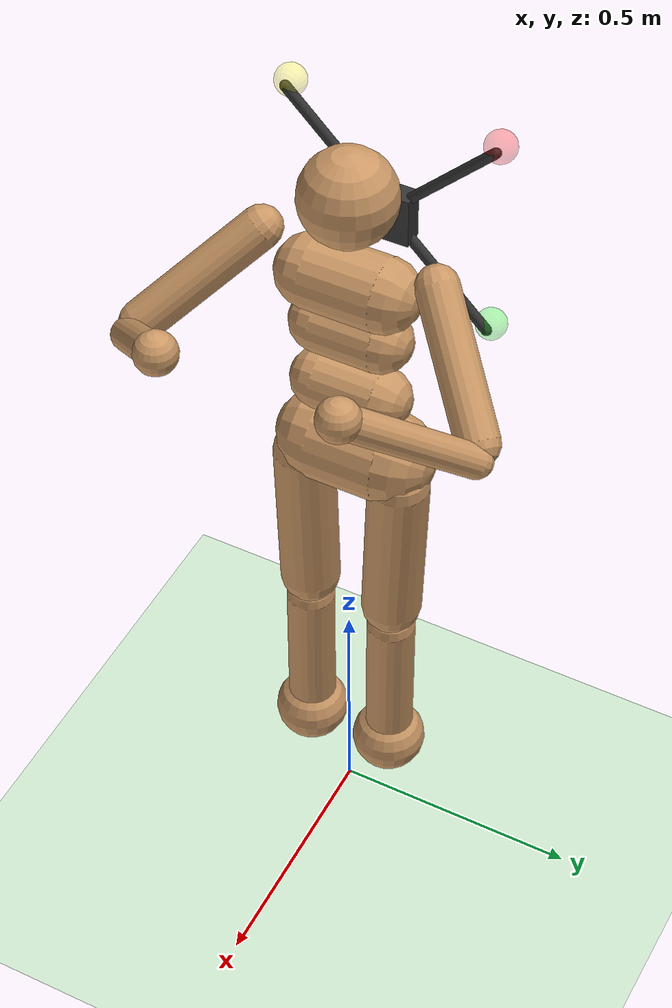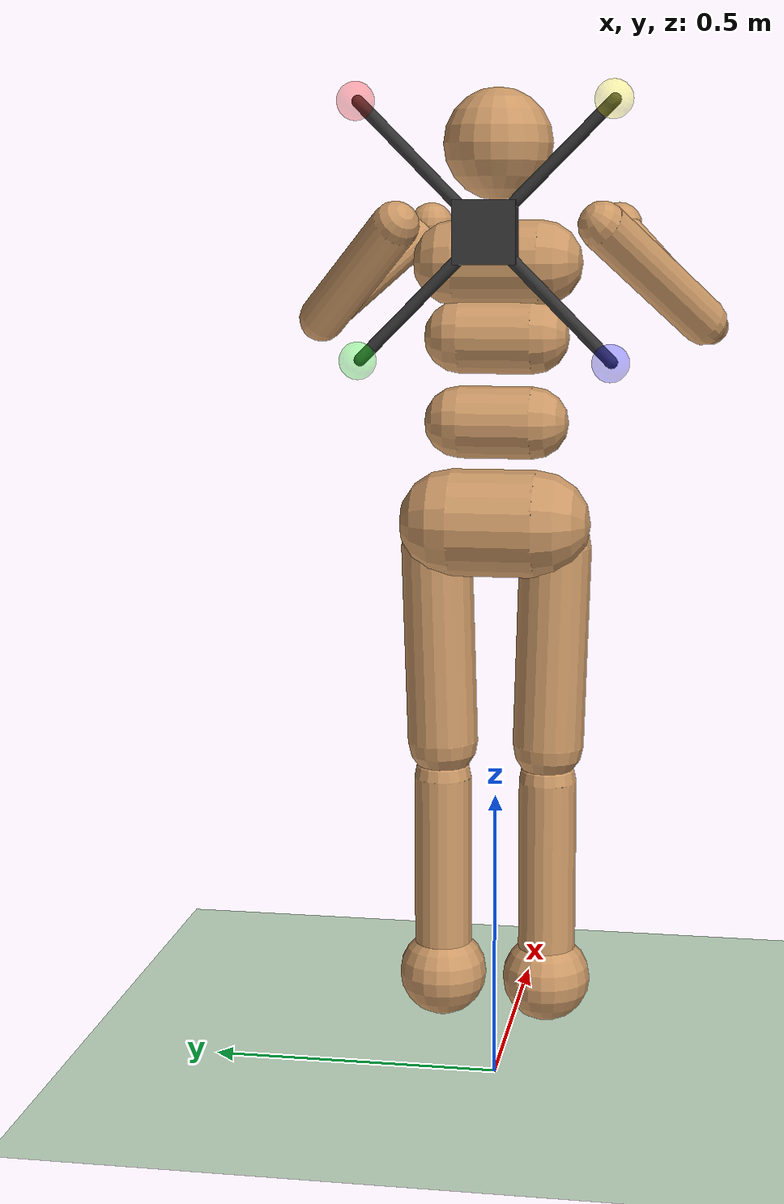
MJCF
<mujoco model="humanoid_quadrotor">
    <compiler angle="degree" inertiafromgeom="true"/>
    <default>
        <joint armature="1" damping="10" limited="true" stiffness="100"/>
        <geom conaffinity="1" condim="1" contype="1" margin="0.001" material="geom" rgba="0.8 0.6 .4 1"/>
        <motor ctrllimited="true" ctrlrange="-.4 .4"/>
        <default class="quad">
             <geom rgba="0.2 0.2 0.2 1" density="100"/>
        </default>
    </default>
    <option integrator="RK4" iterations="50" solver="PGS" timestep="0.003">
    </option>
    <size nkey="5" nuser_geom="1"/>
    <visual>
        <map fogend="5" fogstart="3"/>
    </visual>
    <asset>
        <texture builtin="gradient" height="100" rgb1=".4 .5 .6" rgb2="0 0 0" type="skybox" width="100"/>
        <texture builtin="flat" height="1278" mark="cross" markrgb="1 1 1" name="texgeom" random="0.01" rgb1="0.8 0.6 0.4" rgb2="0.8 0.6 0.4" type="cube" width="127"/>
        <texture builtin="checker" height="100" name="texplane" rgb1="0 0 0" rgb2="0.8 0.8 0.8" type="2d" width="100"/>
        <material name="MatPlane" reflectance="0.5" shininess="1" specular="1" texrepeat="60 60" texture="texplane"/>
        <material name="geom" texture="texgeom" texuniform="true"/>
    </asset>
    <worldbody>
        <light cutoff="100" diffuse="1 1 1" dir="-0 0 -1.3" directional="true" exponent="1" pos="0 0 1.3" specular=".1 .1 .1"/>
        <geom condim="3" friction="1 .1 .1" material="MatPlane" name="floor" pos="0 0 0" rgba="0.8 0.9 0.8 1" size="20 20 0.125" type="plane"/>
        <body name="torso" pos="0 0 1.4">
            <camera name="track" mode="trackcom" pos="0 -4 0" xyaxes="1 0 0 0 0 1"/>
            <joint armature="0" damping="0" limited="false" name="root" pos="0 0 0" stiffness="0" type="free"/>
            <geom fromto="0 -.07 0 0 .07 0" name="torso1" size="0.07" type="capsule"/>
            <geom name="head" pos="0 0 .19" size=".09" type="sphere" user="258"/>
            <geom fromto="-.01 -.06 -.12 -.01 .06 -.12" name="uwaist" size="0.06" type="capsule"/>

            <!-- QUADROTOR ATTACHMENT -->
            <!-- Rotated -90° around Y to compensate for humanoid's face-down orientation -->
            <!-- This makes thrust point upward in world frame when humanoid is horizontal -->
            <body name="quadrotor" pos="-0.15 0 0.05" euler="0 -90 0">
                <!-- Frame -->
                <geom name="quad_hub" type="box" size="0.05 0.05 0.02" class="quad"/>
                <geom name="quad_arm1" fromto="0 0 0  0.2  0.2 0" size="0.01" type="capsule" class="quad"/>
                <geom name="quad_arm2" fromto="0 0 0 -0.2  0.2 0" size="0.01" type="capsule" class="quad"/>
                <geom name="quad_arm3" fromto="0 0 0 -0.2 -0.2 0" size="0.01" type="capsule" class="quad"/>
                <geom name="quad_arm4" fromto="0 0 0  0.2 -0.2 0" size="0.01" type="capsule" class="quad"/>

                <!-- Rotor Sites for thrust application -->
                <site name="rotor1" pos=" 0.2  0.2 0.02" size="0.03" rgba="1 0 0 0.3" type="sphere"/>
                <site name="rotor2" pos="-0.2  0.2 0.02" size="0.03" rgba="0 1 0 0.3" type="sphere"/>
                <site name="rotor3" pos="-0.2 -0.2 0.02" size="0.03" rgba="0 0 1 0.3" type="sphere"/>
                <site name="rotor4" pos=" 0.2 -0.2 0.02" size="0.03" rgba="1 1 0 0.3" type="sphere"/>

                <!-- Sensors -->
                <site name="imu_accel" pos="0 0 0" size="0.01" rgba="1 0 1 1"/>
                <site name="imu_gyro" pos="0 0 0" size="0.01" rgba="1 0 1 1"/>
            </body>

            <body name="lwaist" pos="-.01 0 -0.260" quat="1.000 0 -0.002 0">
                <geom fromto="0 -.06 0 0 .06 0" name="lwaist" size="0.06" type="capsule"/>
                <joint armature="0.02" axis="0 0 1" damping="5" name="abdomen_z" pos="0 0 0.065" range="-45 45" stiffness="20" type="hinge"/>
                <joint armature="0.02" axis="0 1 0" damping="5" name="abdomen_y" pos="0 0 0.065" range="-75 30" stiffness="10" type="hinge"/>
                <body name="pelvis" pos="0 0 -0.165" quat="1.000 0 -0.002 0">
                    <joint armature="0.02" axis="1 0 0" damping="5" name="abdomen_x" pos="0 0 0.1" range="-35 35" stiffness="10" type="hinge"/>
                    <geom fromto="-.02 -.07 0 -.02 .07 0" name="butt" size="0.09" type="capsule"/>
                    <body name="right_thigh" pos="0 -0.1 -0.04">
                        <joint armature="0.01" axis="1 0 0" damping="5" name="right_hip_x" pos="0 0 0" range="-25 5" stiffness="10" type="hinge"/>
                        <joint armature="0.01" axis="0 0 1" damping="5" name="right_hip_z" pos="0 0 0" range="-60 35" stiffness="10" type="hinge"/>
                        <joint armature="0.0080" axis="0 1 0" damping="5" name="right_hip_y" pos="0 0 0" range="-110 20" stiffness="20" type="hinge"/>
                        <geom fromto="0 0 0 0 0.01 -.34" name="right_thigh1" size="0.06" type="capsule"/>
                        <body name="right_shin" pos="0 0.01 -0.403">
                            <joint armature="0.0060" axis="0 -1 0" name="right_knee" pos="0 0 .02" range="-160 -2" type="hinge"/>
                            <geom fromto="0 0 0 0 0 -.3" name="right_shin1" size="0.049" type="capsule"/>
                            <body name="right_foot" pos="0 0 -0.45">
                                <geom name="right_foot" pos="0 0 0.1" size="0.075" type="sphere" user="0"/>
                            </body>
                        </body>
                    </body>
                    <body name="left_thigh" pos="0 0.1 -0.04">
                        <joint armature="0.01" axis="-1 0 0" damping="5" name="left_hip_x" pos="0 0 0" range="-25 5" stiffness="10" type="hinge"/>
                        <joint armature="0.01" axis="0 0 -1" damping="5" name="left_hip_z" pos="0 0 0" range="-60 35" stiffness="10" type="hinge"/>
                        <joint armature="0.01" axis="0 1 0" damping="5" name="left_hip_y" pos="0 0 0" range="-110 20" stiffness="20" type="hinge"/>
                        <geom fromto="0 0 0 0 -0.01 -.34" name="left_thigh1" size="0.06" type="capsule"/>
                        <body name="left_shin" pos="0 -0.01 -0.403">
                            <joint armature="0.0060" axis="0 -1 0" name="left_knee" pos="0 0 .02" range="-160 -2" stiffness="1" type="hinge"/>
                            <geom fromto="0 0 0 0 0 -.3" name="left_shin1" size="0.049" type="capsule"/>
                            <body name="left_foot" pos="0 0 -0.45">
                                <geom name="left_foot" type="sphere" size="0.075" pos="0 0 0.1" user="0" />
                            </body>
                        </body>
                    </body>
                </body>
            </body>
            <body name="right_upper_arm" pos="0 -0.17 0.06">
                <joint armature="0.0068" axis="2 1 1" name="right_shoulder1" pos="0 0 0" range="-85 60" stiffness="1" type="hinge"/>
                <joint armature="0.0051" axis="0 -1 1" name="right_shoulder2" pos="0 0 0" range="-85 60" stiffness="1" type="hinge"/>
                <geom fromto="0 0 0 .16 -.16 -.16" name="right_uarm1" size="0.04 0.16" type="capsule"/>
                <body name="right_lower_arm" pos=".18 -.18 -.18">
                    <joint armature="0.0028" axis="0 -1 1" name="right_elbow" pos="0 0 0" range="-90 50" stiffness="0" type="hinge"/>
                    <geom fromto="0.01 0.01 0.01 .17 .17 .17" name="right_larm" size="0.031" type="capsule"/>
                    <geom name="right_hand" pos=".18 .18 .18" size="0.04" type="sphere"/>
                    <camera pos="0 0 0"/>
                </body>
            </body>
            <body name="left_upper_arm" pos="0 0.17 0.06">
                <joint armature="0.0068" axis="2 -1 1" name="left_shoulder1" pos="0 0 0" range="-60 85" stiffness="1" type="hinge"/>
                <joint armature="0.0051" axis="0 1 1" name="left_shoulder2" pos="0 0 0" range="-60 85" stiffness="1" type="hinge"/>
                <geom fromto="0 0 0 .16 .16 -.16" name="left_uarm1" size="0.04 0.16" type="capsule"/>
                <body name="left_lower_arm" pos=".18 .18 -.18">
                    <joint armature="0.0028" axis="0 -1 -1" name="left_elbow" pos="0 0 0" range="-90 50" stiffness="0" type="hinge"/>
                    <geom fromto="0.01 -0.01 0.01 .17 -.17 .17" name="left_larm" size="0.031" type="capsule"/>
                    <geom name="left_hand" pos=".18 -.18 .18" size="0.04" type="sphere"/>
                </body>
            </body>
        </body>
    </worldbody>
    <tendon>
        <fixed name="left_hipknee">
            <joint coef="-1" joint="left_hip_y"/>
            <joint coef="1" joint="left_knee"/>
        </fixed>
        <fixed name="right_hipknee">
            <joint coef="-1" joint="right_hip_y"/>
            <joint coef="1" joint="right_knee"/>
        </fixed>
    </tendon>

    <actuator>
        <motor gear="100" joint="abdomen_y" name="abdomen_y"/>
        <motor gear="100" joint="abdomen_z" name="abdomen_z"/>
        <motor gear="100" joint="abdomen_x" name="abdomen_x"/>
        <motor gear="100" joint="right_hip_x" name="right_hip_x"/>
        <motor gear="100" joint="right_hip_z" name="right_hip_z"/>
        <motor gear="300" joint="right_hip_y" name="right_hip_y"/>
        <motor gear="200" joint="right_knee" name="right_knee"/>
        <motor gear="100" joint="left_hip_x" name="left_hip_x"/>
        <motor gear="100" joint="left_hip_z" name="left_hip_z"/>
        <motor gear="300" joint="left_hip_y" name="left_hip_y"/>
        <motor gear="200" joint="left_knee" name="left_knee"/>
        <motor gear="25" joint="right_shoulder1" name="right_shoulder1"/>
        <motor gear="25" joint="right_shoulder2" name="right_shoulder2"/>
        <motor gear="25" joint="right_elbow" name="right_elbow"/>
        <motor gear="25" joint="left_shoulder1" name="left_shoulder1"/>
        <motor gear="25" joint="left_shoulder2" name="left_shoulder2"/>
        <motor gear="25" joint="left_elbow" name="left_elbow"/>

        <!-- Quadrotor Motors -->
        <!-- Total mass approx 70kg -> 700N weight. Need >175N per rotor.
             Gear=10, Ctrl=50 -> 500N max per rotor. Total 2000N. -->
        <motor name="thrust1" site="rotor1" gear="0 0 10 0 0 0" ctrllimited="true" ctrlrange="0 50"/>
        <motor name="thrust2" site="rotor2" gear="0 0 10 0 0 0" ctrllimited="true" ctrlrange="0 50"/>
        <motor name="thrust3" site="rotor3" gear="0 0 10 0 0 0" ctrllimited="true" ctrlrange="0 50"/>
        <motor name="thrust4" site="rotor4" gear="0 0 10 0 0 0" ctrllimited="true" ctrlrange="0 50"/>
    </actuator>

    <sensor>
        <accelerometer site="imu_accel" name="quad_accel"/>
        <gyro site="imu_gyro" name="quad_gyro"/>
        <framepos objtype="body" objname="quadrotor" name="quad_pos"/>
        <framequat objtype="body" objname="quadrotor" name="quad_quat"/>
        <framelinvel objtype="body" objname="quadrotor" name="quad_vel"/>
        <frameangvel objtype="body" objname="quadrotor" name="quad_angvel"/>
    </sensor>
</mujoco>
